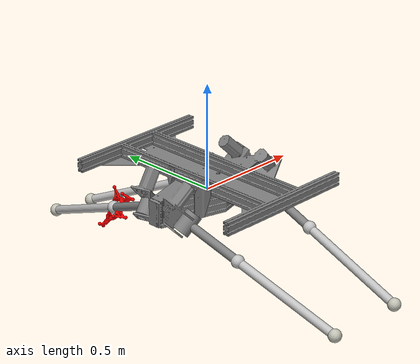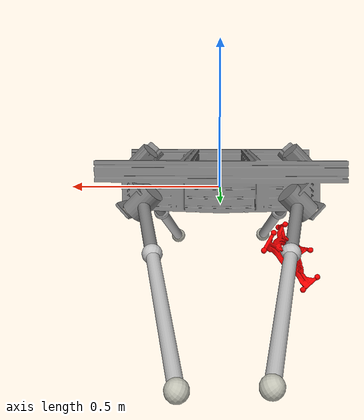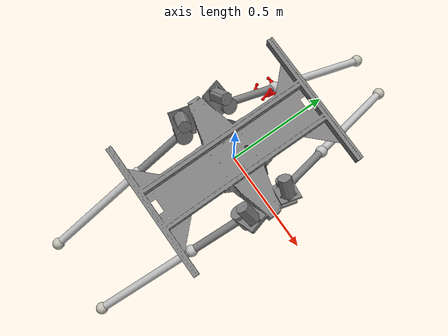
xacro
<?xml version="1.0" ?>
<robot name="Ragnar" xmlns:xacro="http://ros.org/wiki/xacro">
  <xacro:include filename="$(find ragnar_support)/urdf/ragnar_macro.xacro"/>

  <link name="world"/>

  <xacro:ragnar prefix=""/>

  <joint name="world_to_ragnar" type="fixed">
    <parent link="world"/>
    <child link="base_link"/>
    <origin xyz="0 0 0" />
  </joint>

</robot>

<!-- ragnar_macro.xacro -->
<robot name="Ragnar" xmlns:xacro="http://ros.org/wiki/xacro">
  <xacro:include filename="$(find ragnar_support)/urdf/ragnar_upper2_macro.xacro"/>

  <xacro:macro name="ragnar" params="prefix">

    <!-- Base Link -->
    <link name="${prefix}base_link"/>
    <link name="${prefix}base_link2">
      <inertial>
        <origin xyz="-4.80572213006859E-06 9.64495107789746E-06 -0.0184680705713898" rpy="0 0 0" />
        <mass value="26.5217124601092" />
        <inertia ixx="0.936457909215975" ixy="-0.00108838510526368" ixz="1.58187182756307E-06"
          iyy="1.50216890338436" iyz="1.0107984651762E-05" izz="2.28323593907717" />
      </inertial>
      <visual>
        <origin xyz="0 0 0" rpy="0 0 0" />
        <geometry>
          <mesh filename="package://ragnar_support/meshes/base_link.STL" />
        </geometry>
        <material name="">
          <color rgba="0.5 0.5 0.5 1" />
        </material>
      </visual>
      <collision>
        <origin xyz="0 0 0" rpy="0 0 0" />
        <geometry>
          <mesh filename="package://ragnar_support/meshes/base_link.STL" />
        </geometry>
      </collision>
    </link>

    <joint name="${prefix}base_rotate" type="floating">
      <origin xyz="0 0 0.05" rpy="0 0 1.5708" />
      <parent link="${prefix}base_link" />
      <child link="${prefix}base_link2" />
      <axis xyz="0 0 0" />
    </joint>

    <!-- The four ragnar arms -->
    <xacro:ragnar_upper2 prefix="${prefix}" num="1" x="0.122" y="0.249" z="-0.0877" r="-0.577" p="-0.783" w="-1.311" d1="0.300" d2="0.550"/>
    <xacro:ragnar_upper2 prefix="${prefix}" num="2" x="-0.122" y="0.249" z="-0.0877" r="-2.698" p="-0.788" w="-1.834" d1="0.300" d2="0.550"/>
    <xacro:ragnar_upper2 prefix="${prefix}" num="3" x="-0.122" y="-0.249" z="-0.0877" r="-0.456" p="-0.783" w="1.831" d1="0.300" d2="0.550"/>
    <xacro:ragnar_upper2 prefix="${prefix}" num="4" x="0.122" y="-0.249" z="-0.0877" r="-2.531" p="-0.788" w="1.307" d1="0.300" d2="0.550"/>

    <!-- End Effector Link -->
    <link name="${prefix}ee_link">
      <visual>
        <origin xyz="0 0 0" rpy="1.57 0 1.57" />
        <geometry>
          <mesh filename="package://ragnar_support/meshes/ragnar_ee.STL" />
        </geometry>
        <material name="">
          <color rgba="1 0 0 1" />
        </material>
      </visual>
      <collision>
        <origin xyz="0 0 0" rpy="1.57 0 1.57" />
        <geometry>
          <mesh filename="package://ragnar_support/meshes/ragnar_ee.STL" />
        </geometry>
      </collision>
    </link>
    <joint name="${prefix}ee_joint" type="floating">
      <origin xyz="0 0 0" rpy="0 0 0" />
      <parent link="${prefix}lower_arm_1" />
      <child link="${prefix}ee_link" />
    </joint>

    <!-- Tool0 for compliance with ROS-I protocols -->
    <link name="${prefix}tool0"/>
    <joint name="${prefix}ee_link_to_tool0" type="fixed">
      <parent link="${prefix}ee_link"/>
      <child link="${prefix}tool0"/>
    </joint>
  </xacro:macro>
</robot>

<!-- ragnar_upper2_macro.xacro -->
<robot name="ragnar" xmlns:xacro="http://ros.org/wiki/xacro">
  <xacro:macro name="ragnar_upper2" params=" prefix num x y z r p w d1 d2">

  <link name="${prefix}upper_arm_${num}">
    <visual>
      <origin xyz="0 0 0" rpy="0 1.57 0" />
      <geometry>
        <cylinder length="0.1" radius="0.04"/>
      </geometry>
      <material name="">
        <color rgba="0.5 0.5 0.5 1" />
      </material>
    </visual>
    <visual>
      <origin xyz="0 ${d1/2} 0" rpy="1.57 0 0" />
      <geometry>
        <cylinder length="${d1}" radius="0.02"/>
      </geometry>
      <material name="">
        <color rgba="0.5 0.5 0.5 1" />
      </material>
    </visual>

    <collision>
      <origin xyz="0 0 0" rpy="0 1.57 0" />
      <geometry>
        <cylinder length="0.1" radius="0.04"/>
      </geometry>
      <material name="">
        <color rgba="0.5 0.5 0.5 1" />
      </material>
    </collision>
    <collision>
      <origin xyz="0 ${d1/2} 0" rpy="1.57 0 0" />
      <geometry>
        <cylinder length="${d1}" radius="0.02"/>
      </geometry>
      <material name="">
        <color rgba="0.5 0.5 0.5 1" />
      </material>
    </collision>
  </link>

  <joint name="${prefix}joint_${num}" type="floating">
    <origin xyz="${x} ${y} ${z}" rpy="${r} ${p} ${w}" />
    <parent link="${prefix}base_link2" />
    <child link="${prefix}upper_arm_${num}" />
    <axis xyz="-1.0 0 0" />
    <limit effort="0" lower="-3.1416" upper="3.1416" velocity="2.618"/>
  </joint>

  <link name="${prefix}lower_arm_${num}">
    <visual>
      <origin xyz="0 0 0" rpy="0 0 0" />
      <geometry>
        <sphere radius="0.03"/>
      </geometry>
      <material name="">
        <color rgba="0.75 0.75 0.75 1" />
      </material>
    </visual>
    <visual>
      <origin xyz="0 ${d2/2} 0" rpy="1.57 0 0" />
      <geometry>
        <cylinder length="${d2}" radius="0.02"/>
      </geometry>
      <material name="">
        <color rgba="0.75 0.75 0.75 1" />
      </material>
    </visual>
    <visual>
      <origin xyz="0 ${d2} 0" rpy="0 0 0" />
      <geometry>
        <sphere radius="0.03"/>
      </geometry>
      <material name="">
        <color rgba="0.75 0.75 0.7 1" />
      </material>
    </visual>

    <collision>
      <origin xyz="0 0 0" rpy="0 1.57 0" />
      <geometry>
        <cylinder length="0.1" radius="0.04"/>
      </geometry>
      <material name="">
        <color rgba="0.75 0.75 0.75 1" />
      </material>
    </collision>
    <collision>
      <origin xyz="0 ${d2/2} 0" rpy="1.57 0 0" />
      <geometry>
        <cylinder length="${d2}" radius="0.02"/>
      </geometry>
      <material name="">
        <color rgba="0.75 0.75 0.75 1" />
      </material>
    </collision>
  </link>

  <joint name="${prefix}a${num}_j2" type="floating">
    <origin xyz="0 ${d1} 0" rpy="0 0 0" />
    <parent link="${prefix}upper_arm_${num}" />
    <child link="${prefix}lower_arm_${num}" />
  </joint>

  </xacro:macro>
</robot>
